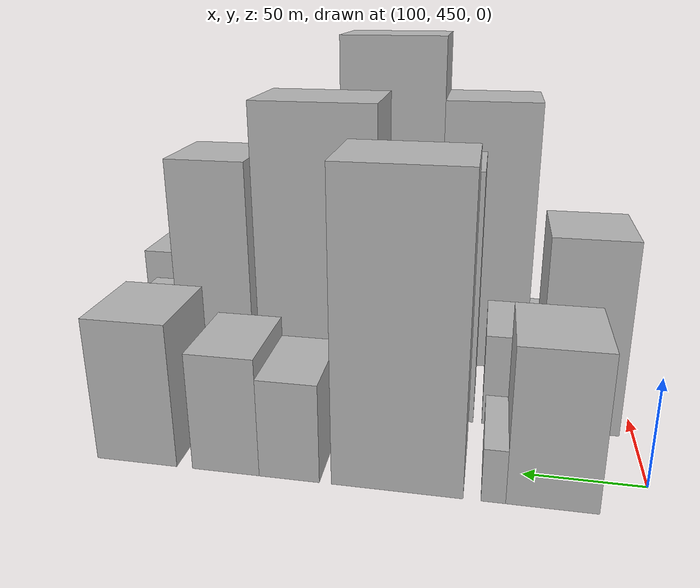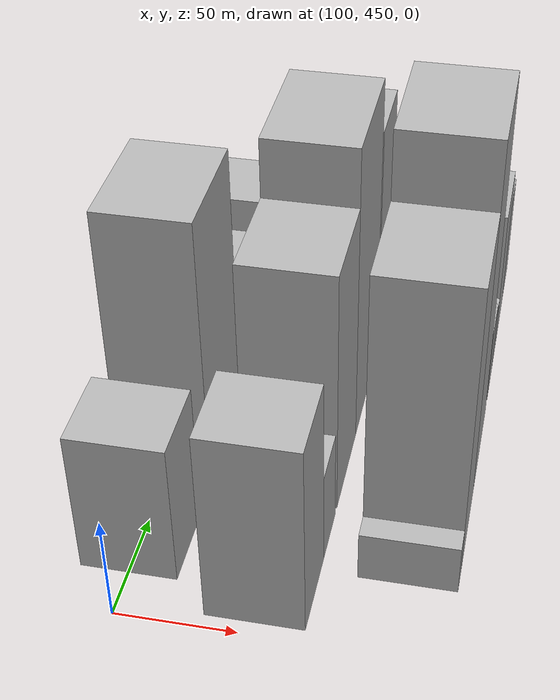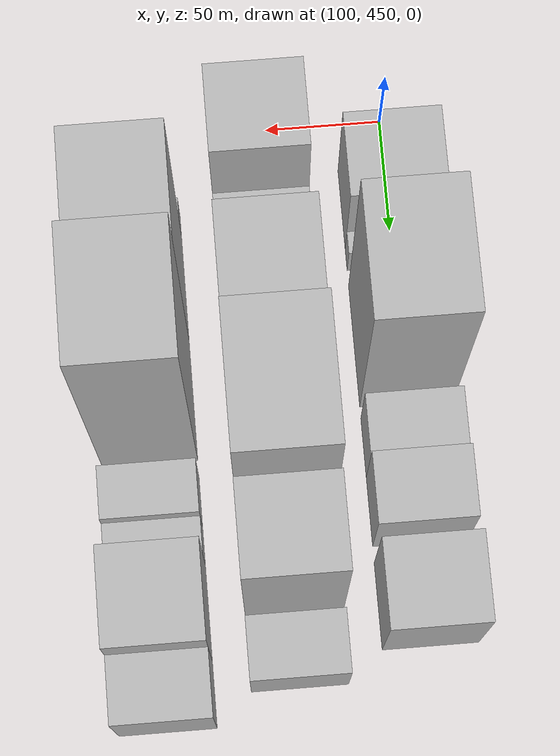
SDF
<sdf version="1.6">
 <world name="default">
  <model name="building_36">
   <static>1</static>
   <pose>100.0000 489.1352 0 0.000000 0.000000 0.000000</pose>
   <link name="link">
    <pose>0 0 34.50 0 0 0</pose>
    <collision name="collision"><geometry><box><size>40.0000 35.7901 69.0000</size></box></geometry></collision>
    <visual name="visual">
     <cast_shadows>0</cast_shadows>
     <geometry><box><size>40.0000 35.7901 69.0000</size></box></geometry>
     <material>
      <script>
       <uri>model://HANNAS_wall/materials/scripts</uri>
       <uri>model://HANNAS_wall/materials/textures</uri>
       <name>vrc/HANNAS_wall</name>
      </script>
     </material>
    </visual>
   </link>
  </model>
  <model name="building_37">
   <static>1</static>
   <pose>100.0000 511.8533 0 0.000000 0.000000 0.000000</pose>
   <link name="link">
    <pose>0 0 12.00 0 0 0</pose>
    <collision name="collision"><geometry><box><size>40.0000 9.6461 24.0000</size></box></geometry></collision>
    <visual name="visual">
     <cast_shadows>0</cast_shadows>
     <geometry><box><size>40.0000 9.6461 24.0000</size></box></geometry>
     <material>
      <script>
       <uri>model://HANNAS_wall/materials/scripts</uri>
       <uri>model://HANNAS_wall/materials/textures</uri>
       <name>vrc/HANNAS_wall</name>
      </script>
     </material>
    </visual>
   </link>
  </model>
  <model name="building_38">
   <static>1</static>
   <pose>100.0000 550.4825 0 0.000000 0.000000 0.000000</pose>
   <link name="link">
    <pose>0 0 67.50 0 0 0</pose>
    <collision name="collision"><geometry><box><size>40.0000 53.6122 135.0000</size></box></geometry></collision>
    <visual name="visual">
     <cast_shadows>0</cast_shadows>
     <geometry><box><size>40.0000 53.6122 135.0000</size></box></geometry>
     <material>
      <script>
       <uri>model://HANNAS_wall/materials/scripts</uri>
       <uri>model://HANNAS_wall/materials/textures</uri>
       <name>vrc/HANNAS_wall</name>
      </script>
     </material>
    </visual>
   </link>
  </model>
  <model name="building_39">
   <static>1</static>
   <pose>100.0000 595.1342 0 0.000000 0.000000 0.000000</pose>
   <link name="link">
    <pose>0 0 22.50 0 0 0</pose>
    <collision name="collision"><geometry><box><size>40.0000 25.6913 45.0000</size></box></geometry></collision>
    <visual name="visual">
     <cast_shadows>0</cast_shadows>
     <geometry><box><size>40.0000 25.6913 45.0000</size></box></geometry>
     <material>
      <script>
       <uri>model://HANNAS_wall/materials/scripts</uri>
       <uri>model://HANNAS_wall/materials/textures</uri>
       <name>vrc/HANNAS_wall</name>
      </script>
     </material>
    </visual>
   </link>
  </model>
  <model name="building_40">
   <static>1</static>
   <pose>100.0000 622.6248 0 0.000000 0.000000 0.000000</pose>
   <link name="link">
    <pose>0 0 27.00 0 0 0</pose>
    <collision name="collision"><geometry><box><size>40.0000 29.2899 54.0000</size></box></geometry></collision>
    <visual name="visual">
     <cast_shadows>0</cast_shadows>
     <geometry><box><size>40.0000 29.2899 54.0000</size></box></geometry>
     <material>
      <script>
       <uri>model://HANNAS_wall/materials/scripts</uri>
       <uri>model://HANNAS_wall/materials/textures</uri>
       <name>vrc/HANNAS_wall</name>
      </script>
     </material>
    </visual>
   </link>
  </model>
  <model name="building_41">
   <static>1</static>
   <pose>100.0000 662.3822 0 0.000000 0.000000 0.000000</pose>
   <link name="link">
    <pose>0 0 33.00 0 0 0</pose>
    <collision name="collision"><geometry><box><size>40.0000 36.2250 66.0000</size></box></geometry></collision>
    <visual name="visual">
     <cast_shadows>0</cast_shadows>
     <geometry><box><size>40.0000 36.2250 66.0000</size></box></geometry>
     <material>
      <script>
       <uri>model://HANNAS_wall/materials/scripts</uri>
       <uri>model://HANNAS_wall/materials/textures</uri>
       <name>vrc/HANNAS_wall</name>
      </script>
     </material>
    </visual>
   </link>
  </model>
  <model name="building_84">
   <static>1</static>
   <pose>155.0000 474.5398 0 0.000000 0.000000 0.000000</pose>
   <link name="link">
    <pose>0 0 46.50 0 0 0</pose>
    <collision name="collision"><geometry><box><size>40.0000 36.8170 93.0000</size></box></geometry></collision>
    <visual name="visual">
     <cast_shadows>0</cast_shadows>
     <geometry><box><size>40.0000 36.8170 93.0000</size></box></geometry>
     <material>
      <script>
       <uri>model://HANNAS_wall/materials/scripts</uri>
       <uri>model://HANNAS_wall/materials/textures</uri>
       <name>vrc/HANNAS_wall</name>
      </script>
     </material>
    </visual>
   </link>
  </model>
  <model name="building_85">
   <static>1</static>
   <pose>155.0000 505.3583 0 0.000000 0.000000 0.000000</pose>
   <link name="link">
    <pose>0 0 22.50 0 0 0</pose>
    <collision name="collision"><geometry><box><size>40.0000 24.8200 45.0000</size></box></geometry></collision>
    <visual name="visual">
     <cast_shadows>0</cast_shadows>
     <geometry><box><size>40.0000 24.8200 45.0000</size></box></geometry>
     <material>
      <script>
       <uri>model://HANNAS_wall/materials/scripts</uri>
       <uri>model://HANNAS_wall/materials/textures</uri>
       <name>vrc/HANNAS_wall</name>
      </script>
     </material>
    </visual>
   </link>
  </model>
  <model name="building_86">
   <static>1</static>
   <pose>155.0000 544.6036 0 0.000000 0.000000 0.000000</pose>
   <link name="link">
    <pose>0 0 60.00 0 0 0</pose>
    <collision name="collision"><geometry><box><size>40.0000 45.6705 120.0000</size></box></geometry></collision>
    <visual name="visual">
     <cast_shadows>0</cast_shadows>
     <geometry><box><size>40.0000 45.6705 120.0000</size></box></geometry>
     <material>
      <script>
       <uri>model://HANNAS_wall/materials/scripts</uri>
       <uri>model://HANNAS_wall/materials/textures</uri>
       <name>vrc/HANNAS_wall</name>
      </script>
     </material>
    </visual>
   </link>
  </model>
  <model name="building_87">
   <static>1</static>
   <pose>155.0000 595.8088 0 0.000000 0.000000 0.000000</pose>
   <link name="link">
    <pose>0 0 73.50 0 0 0</pose>
    <collision name="collision"><geometry><box><size>40.0000 56.7399 147.0000</size></box></geometry></collision>
    <visual name="visual">
     <cast_shadows>0</cast_shadows>
     <geometry><box><size>40.0000 56.7399 147.0000</size></box></geometry>
     <material>
      <script>
       <uri>model://HANNAS_wall/materials/scripts</uri>
       <uri>model://HANNAS_wall/materials/textures</uri>
       <name>vrc/HANNAS_wall</name>
      </script>
     </material>
    </visual>
   </link>
  </model>
  <model name="building_88">
   <static>1</static>
   <pose>155.0000 645.8658 0 0.000000 0.000000 0.000000</pose>
   <link name="link">
    <pose>0 0 60.00 0 0 0</pose>
    <collision name="collision"><geometry><box><size>40.0000 37.3742 120.0000</size></box></geometry></collision>
    <visual name="visual">
     <cast_shadows>0</cast_shadows>
     <geometry><box><size>40.0000 37.3742 120.0000</size></box></geometry>
     <material>
      <script>
       <uri>model://HANNAS_wall/materials/scripts</uri>
       <uri>model://HANNAS_wall/materials/textures</uri>
       <name>vrc/HANNAS_wall</name>
      </script>
     </material>
    </visual>
   </link>
  </model>
  <model name="building_89">
   <static>1</static>
   <pose>155.0000 680.4578 0 0.000000 0.000000 0.000000</pose>
   <link name="link">
    <pose>0 0 22.50 0 0 0</pose>
    <collision name="collision"><geometry><box><size>40.0000 25.8099 45.0000</size></box></geometry></collision>
    <visual name="visual">
     <cast_shadows>0</cast_shadows>
     <geometry><box><size>40.0000 25.8099 45.0000</size></box></geometry>
     <material>
      <script>
       <uri>model://HANNAS_wall/materials/scripts</uri>
       <uri>model://HANNAS_wall/materials/textures</uri>
       <name>vrc/HANNAS_wall</name>
      </script>
     </material>
    </visual>
   </link>
  </model>
  <model name="building_138">
   <static>1</static>
   <pose>210.0000 491.3825 0 0.000000 0.000000 0.000000</pose>
   <link name="link">
    <pose>0 0 12.00 0 0 0</pose>
    <collision name="collision"><geometry><box><size>40.0000 10.2628 24.0000</size></box></geometry></collision>
    <visual name="visual">
     <cast_shadows>0</cast_shadows>
     <geometry><box><size>40.0000 10.2628 24.0000</size></box></geometry>
     <material>
      <script>
       <uri>model://HANNAS_wall/materials/scripts</uri>
       <uri>model://HANNAS_wall/materials/textures</uri>
       <name>vrc/HANNAS_wall</name>
      </script>
     </material>
    </visual>
   </link>
  </model>
  <model name="building_139">
   <static>1</static>
   <pose>210.0000 519.7891 0 0.000000 0.000000 0.000000</pose>
   <link name="link">
    <pose>0 0 70.50 0 0 0</pose>
    <collision name="collision"><geometry><box><size>40.0000 46.5502 141.0000</size></box></geometry></collision>
    <visual name="visual">
     <cast_shadows>0</cast_shadows>
     <geometry><box><size>40.0000 46.5502 141.0000</size></box></geometry>
     <material>
      <script>
       <uri>model://HANNAS_wall/materials/scripts</uri>
       <uri>model://HANNAS_wall/materials/textures</uri>
       <name>vrc/HANNAS_wall</name>
      </script>
     </material>
    </visual>
   </link>
  </model>
  <model name="building_140">
   <static>1</static>
   <pose>210.0000 569.0196 0 0.000000 0.000000 0.000000</pose>
   <link name="link">
    <pose>0 0 85.50 0 0 0</pose>
    <collision name="collision"><geometry><box><size>40.0000 51.9109 171.0000</size></box></geometry></collision>
    <visual name="visual">
     <cast_shadows>0</cast_shadows>
     <geometry><box><size>40.0000 51.9109 171.0000</size></box></geometry>
     <material>
      <script>
       <uri>model://HANNAS_wall/materials/scripts</uri>
       <uri>model://HANNAS_wall/materials/textures</uri>
       <name>vrc/HANNAS_wall</name>
      </script>
     </material>
    </visual>
   </link>
  </model>
  <model name="building_141">
   <static>1</static>
   <pose>210.0000 612.9640 0 0.000000 0.000000 0.000000</pose>
   <link name="link">
    <pose>0 0 19.50 0 0 0</pose>
    <collision name="collision"><geometry><box><size>40.0000 21.9777 39.0000</size></box></geometry></collision>
    <visual name="visual">
     <cast_shadows>0</cast_shadows>
     <geometry><box><size>40.0000 21.9777 39.0000</size></box></geometry>
     <material>
      <script>
       <uri>model://HANNAS_wall/materials/scripts</uri>
       <uri>model://HANNAS_wall/materials/textures</uri>
       <name>vrc/HANNAS_wall</name>
      </script>
     </material>
    </visual>
   </link>
  </model>
  <model name="building_142">
   <static>1</static>
   <pose>210.0000 631.9946 0 0.000000 0.000000 0.000000</pose>
   <link name="link">
    <pose>0 0 15.00 0 0 0</pose>
    <collision name="collision"><geometry><box><size>40.0000 16.0836 30.0000</size></box></geometry></collision>
    <visual name="visual">
     <cast_shadows>0</cast_shadows>
     <geometry><box><size>40.0000 16.0836 30.0000</size></box></geometry>
     <material>
      <script>
       <uri>model://HANNAS_wall/materials/scripts</uri>
       <uri>model://HANNAS_wall/materials/textures</uri>
       <name>vrc/HANNAS_wall</name>
      </script>
     </material>
    </visual>
   </link>
  </model>
  <model name="building_143">
   <static>1</static>
   <pose>210.0000 659.8791 0 0.000000 0.000000 0.000000</pose>
   <link name="link">
    <pose>0 0 37.50 0 0 0</pose>
    <collision name="collision"><geometry><box><size>40.0000 39.6853 75.0000</size></box></geometry></collision>
    <visual name="visual">
     <cast_shadows>0</cast_shadows>
     <geometry><box><size>40.0000 39.6853 75.0000</size></box></geometry>
     <material>
      <script>
       <uri>model://HANNAS_wall/materials/scripts</uri>
       <uri>model://HANNAS_wall/materials/textures</uri>
       <name>vrc/HANNAS_wall</name>
      </script>
     </material>
    </visual>
   </link>
  </model>
  <model name="building_144">
   <static>1</static>
   <pose>210.0000 693.3320 0 0.000000 0.000000 0.000000</pose>
   <link name="link">
    <pose>0 0 27.00 0 0 0</pose>
    <collision name="collision"><geometry><box><size>40.0000 27.2205 54.0000</size></box></geometry></collision>
    <visual name="visual">
     <cast_shadows>0</cast_shadows>
     <geometry><box><size>40.0000 27.2205 54.0000</size></box></geometry>
     <material>
      <script>
       <uri>model://HANNAS_wall/materials/scripts</uri>
       <uri>model://HANNAS_wall/materials/textures</uri>
       <name>vrc/HANNAS_wall</name>
      </script>
     </material>
    </visual>
   </link>
  </model>
 </world>
</sdf>
